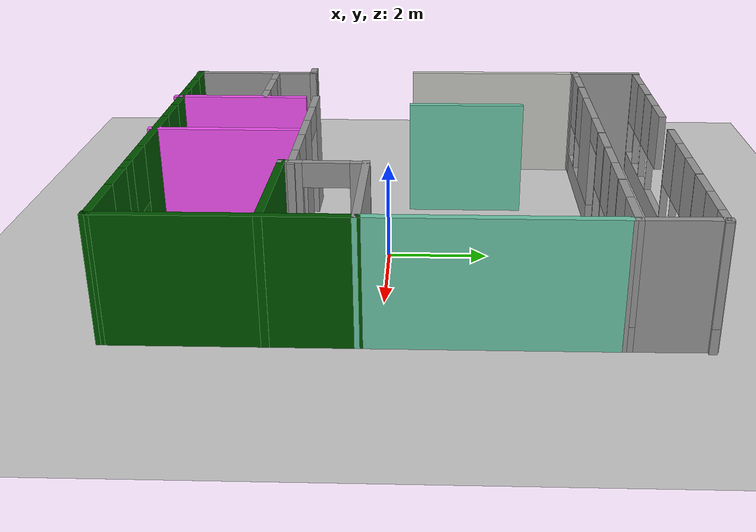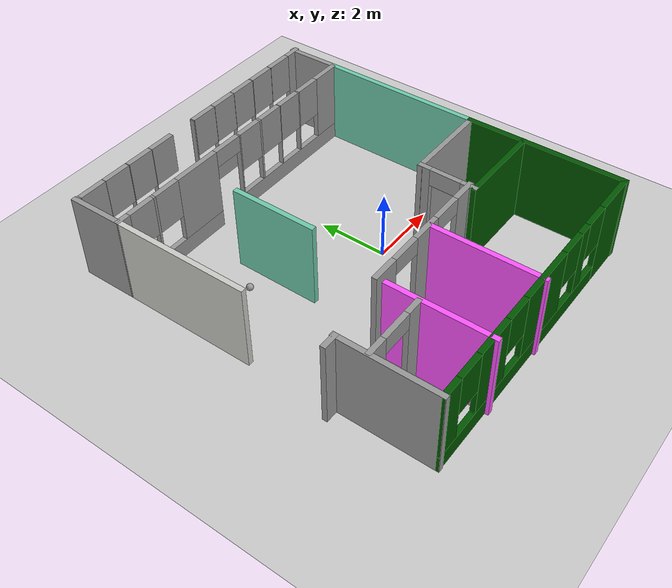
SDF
<sdf version="1.6">
 <world name="default">
  <plugin name="welcome" filename="libwelcome.so"/>
  <light name="sun" type="directional">
   <pose>0 0 10 0 -0 0</pose>
   <diffuse>0.8 0.8 0.8 1</diffuse>
   <specular>0.2 0.2 0.2 1</specular>
   <attenuation>
    <range>1000</range>
    <constant>0.9</constant>
    <linear>0.01</linear>
    <quadratic>0.001</quadratic>
   </attenuation>
   <direction>-0.5 0.1 -0.9</direction>
  </light>
  <model name="ground_plane">
   <static>1</static>
   <link name="link">
    <collision name="collision">
     <geometry><plane><normal>0 0 1</normal><size>100 100</size></plane></geometry>
     <surface>
      <contact><collide_bitmask>65535</collide_bitmask></contact>
      <friction><ode><mu>100</mu><mu2>50</mu2></ode></friction>
     </surface>
    </collision>
    <visual name="visual">
     <cast_shadows>0</cast_shadows>
     <geometry><plane><normal>0 0 1</normal><size>100 100</size></plane></geometry>
     <material>
      <script><uri>file://media/materials/scripts/gazebo.material</uri><name>Gazebo/Grey</name></script>
     </material>
    </visual>
   </link>
  </model>
  <gravity>0 0 -9.8</gravity>
  <magnetic_field>6e-06 2.3e-05 -4.2e-05</magnetic_field>
  <atmosphere type="adiabatic"/>
  <physics name="default_physics" default="0" type="ode">
   <max_step_size>0.001</max_step_size>
   <real_time_factor>1</real_time_factor>
   <real_time_update_rate>1000</real_time_update_rate>
  </physics>
  <scene><ambient>0.4 0.4 0.4 1</ambient><background>0.7 0.7 0.7 1</background><shadows>1</shadows></scene>
  <spherical_coordinates>
   <surface_model>EARTH_WGS84</surface_model>
   <latitude_deg>0</latitude_deg>
   <longitude_deg>0</longitude_deg>
   <elevation>0</elevation>
   <heading_deg>0</heading_deg>
  </spherical_coordinates>
  <model name="our_home">
   <pose>-0.79725 0.43527 0 0 -0 0</pose>
   <link name="Wall_1">
    <collision name="Wall_1_Collision">
     <geometry><box><size>3.98843 0.15 2.5</size></box></geometry>
     <pose>0 0 1.25 0 -0 0</pose>
    </collision>
    <visual name="Wall_1_Visual">
     <pose>0 0 1.25 0 -0 0</pose>
     <geometry><box><size>3.98843 0.15 2.5</size></box></geometry>
     <material>
      <script><uri>file://media/materials/scripts/gazebo.material</uri><name>Gazebo/CeilingTiled</name></script>
      <ambient>0.435294 0.796078 0.67451 1</ambient>
     </material>
     <meta><layer>0</layer></meta>
    </visual>
    <pose>-4.20959 1.9235 0 0 -0 1.57777</pose>
   </link>
   <link name="Wall_13">
    <collision name="Wall_13_Collision">
     <geometry><box><size>4.67985 0.15 2.5</size></box></geometry>
     <pose>0 0 1.25 0 -0 0</pose>
    </collision>
    <visual name="Wall_13_Visual">
     <pose>0 0 1.25 0 -0 0</pose>
     <geometry><box><size>4.67985 0.15 2.5</size></box></geometry>
     <material>
      <script><uri>file://media/materials/scripts/gazebo.material</uri><name>Gazebo/Grey</name></script>
      <ambient>0 0.333333 0 1</ambient>
     </material>
     <meta><layer>0</layer></meta>
    </visual>
    <pose>4.39155 -3.05803 0 0 0 -1.56957</pose>
   </link>
   <link name="Wall_14">
    <pose>0.16282 -5.27256 0 0 -0 3.13446</pose>
    <visual name="Wall_14_Visual_0">
     <pose>-3.6411 0 1.25 0 -0 0</pose>
     <geometry><box><size>1.331 0.15 2.5</size></box></geometry>
     <material>
      <script><uri>file://media/materials/scripts/gazebo.material</uri><name>Gazebo/Grey</name></script>
      <ambient>0 0.333333 0 1</ambient>
     </material>
     <meta><layer>0</layer></meta>
    </visual>
    <collision name="Wall_14_Collision_0">
     <geometry><box><size>1.331 0.15 2.5</size></box></geometry>
     <pose>-3.6411 0 1.25 0 -0 0</pose>
    </collision>
    <visual name="Wall_14_Visual_1">
     <pose>0.665502 0 0.25 0 -0 0</pose>
     <geometry><box><size>7.2822 0.15 0.5</size></box></geometry>
     <material>
      <script><uri>file://media/materials/scripts/gazebo.material</uri><name>Gazebo/Grey</name></script>
      <ambient>0 0.333333 0 1</ambient>
     </material>
     <meta><layer>0</layer></meta>
    </visual>
    <collision name="Wall_14_Collision_1">
     <geometry><box><size>7.2822 0.15 0.5</size></box></geometry>
     <pose>0.665502 0 0.25 0 -0 0</pose>
    </collision>
    <visual name="Wall_14_Visual_2">
     <pose>-1.9778 0 1.5 0 -0 0</pose>
     <geometry><box><size>0.395589 0.15 2</size></box></geometry>
     <material>
      <script><uri>file://media/materials/scripts/gazebo.material</uri><name>Gazebo/Grey</name></script>
      <ambient>0 0.333333 0 1</ambient>
     </material>
     <meta><layer>0</layer></meta>
    </visual>
    <collision name="Wall_14_Collision_2">
     <geometry><box><size>0.395589 0.15 2</size></box></geometry>
     <pose>-1.9778 0 1.5 0 -0 0</pose>
    </collision>
    <visual name="Wall_14_Visual_3">
     <pose>-0.07181 0 1.5 0 -0 0</pose>
     <geometry><box><size>1.8164 0.15 2</size></box></geometry>
     <material>
      <script><uri>file://media/materials/scripts/gazebo.material</uri><name>Gazebo/Grey</name></script>
      <ambient>0 0.333333 0 1</ambient>
     </material>
     <meta><layer>0</layer></meta>
    </visual>
    <collision name="Wall_14_Collision_3">
     <geometry><box><size>1.8164 0.15 2</size></box></geometry>
     <pose>-0.07181 0 1.5 0 -0 0</pose>
    </collision>
    <visual name="Wall_14_Visual_4">
     <pose>2.24598 0 1.5 0 -0 0</pose>
     <geometry><box><size>1.21918 0.15 2</size></box></geometry>
     <material>
      <script><uri>file://media/materials/scripts/gazebo.material</uri><name>Gazebo/Grey</name></script>
      <ambient>0 0.333333 0 1</ambient>
     </material>
     <meta><layer>0</layer></meta>
    </visual>
    <collision name="Wall_14_Collision_4">
     <geometry><box><size>1.21918 0.15 2</size></box></geometry>
     <pose>2.24598 0 1.5 0 -0 0</pose>
    </collision>
    <visual name="Wall_14_Visual_5">
     <pose>3.98108 0 1.5 0 -0 0</pose>
     <geometry><box><size>0.651037 0.15 2</size></box></geometry>
     <material>
      <script><uri>file://media/materials/scripts/gazebo.material</uri><name>Gazebo/Grey</name></script>
      <ambient>0 0.333333 0 1</ambient>
     </material>
     <meta><layer>0</layer></meta>
    </visual>
    <collision name="Wall_14_Collision_5">
     <geometry><box><size>0.651037 0.15 2</size></box></geometry>
     <pose>3.98108 0 1.5 0 -0 0</pose>
    </collision>
    <visual name="Wall_14_Visual_6">
     <pose>-2.5756 0 1.9 0 -0 0</pose>
     <geometry><box><size>0.8 0.15 1.2</size></box></geometry>
     <material>
      <script><uri>file://media/materials/scripts/gazebo.material</uri><name>Gazebo/Grey</name></script>
      <ambient>0 0.333333 0 1</ambient>
     </material>
     <meta><layer>0</layer></meta>
    </visual>
    <collision name="Wall_14_Collision_6">
     <geometry><box><size>0.8 0.15 1.2</size></box></geometry>
     <pose>-2.5756 0 1.9 0 -0 0</pose>
    </collision>
    <visual name="Wall_14_Visual_7">
     <pose>-1.38001 0 1.9 0 -0 0</pose>
     <geometry><box><size>0.8 0.15 1.2</size></box></geometry>
     <material>
      <script><uri>file://media/materials/scripts/gazebo.material</uri><name>Gazebo/Grey</name></script>
      <ambient>0 0.333333 0 1</ambient>
     </material>
     <meta><layer>0</layer></meta>
    </visual>
    <collision name="Wall_14_Collision_7">
     <geometry><box><size>0.8 0.15 1.2</size></box></geometry>
     <pose>-1.38001 0 1.9 0 -0 0</pose>
    </collision>
    <visual name="Wall_14_Visual_8">
     <pose>1.23639 0 1.9 0 -0 0</pose>
     <geometry><box><size>0.8 0.15 1.2</size></box></geometry>
     <material>
      <script><uri>file://media/materials/scripts/gazebo.material</uri><name>Gazebo/Grey</name></script>
      <ambient>0 0.333333 0 1</ambient>
     </material>
     <meta><layer>0</layer></meta>
    </visual>
    <collision name="Wall_14_Collision_8">
     <geometry><box><size>0.8 0.15 1.2</size></box></geometry>
     <pose>1.23639 0 1.9 0 -0 0</pose>
    </collision>
    <visual name="Wall_14_Visual_9">
     <pose>3.25557 0 1.9 0 -0 0</pose>
     <geometry><box><size>0.8 0.15 1.2</size></box></geometry>
     <material>
      <script><uri>file://media/materials/scripts/gazebo.material</uri><name>Gazebo/Grey</name></script>
      <ambient>0 0.333333 0 1</ambient>
     </material>
     <meta><layer>0</layer></meta>
    </visual>
    <collision name="Wall_14_Collision_9">
     <geometry><box><size>0.8 0.15 1.2</size></box></geometry>
     <pose>3.25557 0 1.9 0 -0 0</pose>
    </collision>
   </link>
   <link name="Wall_17">
    <collision name="Wall_17_Collision">
     <geometry><box><size>2.92769 0.15 2.5</size></box></geometry>
     <pose>0 0 1.25 0 -0 0</pose>
    </collision>
    <visual name="Wall_17_Visual">
     <pose>0 0 1.25 0 -0 0</pose>
     <geometry><box><size>2.92769 0.15 2.5</size></box></geometry>
     <material>
      <script><uri>file://media/materials/scripts/gazebo.material</uri><name>Gazebo/Grey</name></script>
      <ambient>1 1 1 1</ambient>
     </material>
     <meta><layer>0</layer></meta>
    </visual>
    <pose>-4.06867 -3.87377 0 0 -0 1.5708</pose>
   </link>
   <link name="Wall_2">
    <pose>0.078216 3.87343 0 0 -0 0</pose>
    <visual name="Wall_2_Visual_0">
     <pose>-4.17296 0 1.25 0 -0 0</pose>
     <geometry><box><size>0.406443 0.15 2.5</size></box></geometry>
     <material>
      <script><uri>file://media/materials/scripts/gazebo.material</uri><name>Gazebo/Grey</name></script>
      <ambient>1 1 1 1</ambient>
     </material>
     <meta><layer>0</layer></meta>
    </visual>
    <collision name="Wall_2_Collision_0">
     <geometry><box><size>0.406443 0.15 2.5</size></box></geometry>
     <pose>-4.17296 0 1.25 0 -0 0</pose>
    </collision>
    <visual name="Wall_2_Visual_1">
     <pose>0.048461 0 1.25 0 -0 0</pose>
     <geometry><box><size>0.041555 0.15 2.5</size></box></geometry>
     <material>
      <script><uri>file://media/materials/scripts/gazebo.material</uri><name>Gazebo/Grey</name></script>
      <ambient>1 1 1 1</ambient>
     </material>
     <meta><layer>0</layer></meta>
    </visual>
    <collision name="Wall_2_Collision_1">
     <geometry><box><size>0.041555 0.15 2.5</size></box></geometry>
     <pose>0.048461 0 1.25 0 -0 0</pose>
    </collision>
    <visual name="Wall_2_Visual_2">
     <pose>-2.42103 0 0.25 0 -0 0</pose>
     <geometry><box><size>3.09742 0.15 0.5</size></box></geometry>
     <material>
      <script><uri>file://media/materials/scripts/gazebo.material</uri><name>Gazebo/Grey</name></script>
      <ambient>1 1 1 1</ambient>
     </material>
     <meta><layer>0</layer></meta>
    </visual>
    <collision name="Wall_2_Collision_2">
     <geometry><box><size>3.09742 0.15 0.5</size></box></geometry>
     <pose>-2.42103 0 0.25 0 -0 0</pose>
    </collision>
    <visual name="Wall_2_Visual_3">
     <pose>2.22271 0 0.25 0 -0 0</pose>
     <geometry><box><size>4.30694 0.15 0.5</size></box></geometry>
     <material>
      <script><uri>file://media/materials/scripts/gazebo.material</uri><name>Gazebo/Grey</name></script>
      <ambient>1 1 1 1</ambient>
     </material>
     <meta><layer>0</layer></meta>
    </visual>
    <collision name="Wall_2_Collision_3">
     <geometry><box><size>4.30694 0.15 0.5</size></box></geometry>
     <pose>2.22271 0 0.25 0 -0 0</pose>
    </collision>
    <visual name="Wall_2_Visual_4">
     <pose>-3.13433 0 1.5 0 -0 0</pose>
     <geometry><box><size>0.070821 0.15 2</size></box></geometry>
     <material>
      <script><uri>file://media/materials/scripts/gazebo.material</uri><name>Gazebo/Grey</name></script>
      <ambient>1 1 1 1</ambient>
     </material>
     <meta><layer>0</layer></meta>
    </visual>
    <collision name="Wall_2_Collision_4">
     <geometry><box><size>0.070821 0.15 2</size></box></geometry>
     <pose>-3.13433 0 1.5 0 -0 0</pose>
    </collision>
    <visual name="Wall_2_Visual_5">
     <pose>-1.58562 0 1.5 0 -0 0</pose>
     <geometry><box><size>1.4266 0.15 2</size></box></geometry>
     <material>
      <script><uri>file://media/materials/scripts/gazebo.material</uri><name>Gazebo/Grey</name></script>
      <ambient>1 1 1 1</ambient>
     </material>
     <meta><layer>0</layer></meta>
    </visual>
    <collision name="Wall_2_Collision_5">
     <geometry><box><size>1.4266 0.15 2</size></box></geometry>
     <pose>-1.58562 0 1.5 0 -0 0</pose>
    </collision>
    <visual name="Wall_2_Visual_6">
     <pose>-1.58562 0 1.5 0 -0 0</pose>
     <geometry><box><size>1.4266 0.15 2</size></box></geometry>
     <material>
      <script><uri>file://media/materials/scripts/gazebo.material</uri><name>Gazebo/Grey</name></script>
      <ambient>1 1 1 1</ambient>
     </material>
     <meta><layer>0</layer></meta>
    </visual>
    <collision name="Wall_2_Collision_6">
     <geometry><box><size>1.4266 0.15 2</size></box></geometry>
     <pose>-1.58562 0 1.5 0 -0 0</pose>
    </collision>
    <visual name="Wall_2_Visual_7">
     <pose>0.902349 0 1.5 0 -0 0</pose>
     <geometry><box><size>0.066221 0.15 2</size></box></geometry>
     <material>
      <script><uri>file://media/materials/scripts/gazebo.material</uri><name>Gazebo/Grey</name></script>
      <ambient>1 1 1 1</ambient>
     </material>
     <meta><layer>0</layer></meta>
    </visual>
    <collision name="Wall_2_Collision_7">
     <geometry><box><size>0.066221 0.15 2</size></box></geometry>
     <pose>0.902349 0 1.5 0 -0 0</pose>
    </collision>
    <visual name="Wall_2_Visual_8">
     <pose>1.74516 0 1.5 0 -0 0</pose>
     <geometry><box><size>0.019398 0.15 2</size></box></geometry>
     <material>
      <script><uri>file://media/materials/scripts/gazebo.material</uri><name>Gazebo/Grey</name></script>
      <ambient>1 1 1 1</ambient>
     </material>
     <meta><layer>0</layer></meta>
    </visual>
    <collision name="Wall_2_Collision_8">
     <geometry><box><size>0.019398 0.15 2</size></box></geometry>
     <pose>1.74516 0 1.5 0 -0 0</pose>
    </collision>
    <visual name="Wall_2_Visual_9">
     <pose>2.57626 0 1.5 0 -0 0</pose>
     <geometry><box><size>0.042809 0.15 2</size></box></geometry>
     <material>
      <script><uri>file://media/materials/scripts/gazebo.material</uri><name>Gazebo/Grey</name></script>
      <ambient>1 1 1 1</ambient>
     </material>
     <meta><layer>0</layer></meta>
    </visual>
    <collision name="Wall_2_Collision_9">
     <geometry><box><size>0.042809 0.15 2</size></box></geometry>
     <pose>2.57626 0 1.5 0 -0 0</pose>
    </collision>
    <visual name="Wall_2_Visual_10">
     <pose>3.88692 0 1.5 0 -0 0</pose>
     <geometry><box><size>0.978513 0.15 2</size></box></geometry>
     <material>
      <script><uri>file://media/materials/scripts/gazebo.material</uri><name>Gazebo/Grey</name></script>
      <ambient>1 1 1 1</ambient>
     </material>
     <meta><layer>0</layer></meta>
    </visual>
    <collision name="Wall_2_Collision_10">
     <geometry><box><size>0.978513 0.15 2</size></box></geometry>
     <pose>3.88692 0 1.5 0 -0 0</pose>
    </collision>
    <visual name="Wall_2_Visual_11">
     <pose>-3.56974 0 1.9 0 -0 0</pose>
     <geometry><box><size>0.8 0.15 1.2</size></box></geometry>
     <material>
      <script><uri>file://media/materials/scripts/gazebo.material</uri><name>Gazebo/Grey</name></script>
      <ambient>1 1 1 1</ambient>
     </material>
     <meta><layer>0</layer></meta>
    </visual>
    <collision name="Wall_2_Collision_11">
     <geometry><box><size>0.8 0.15 1.2</size></box></geometry>
     <pose>-3.56974 0 1.9 0 -0 0</pose>
    </collision>
    <visual name="Wall_2_Visual_12">
     <pose>0.469238 0 1.9 0 -0 0</pose>
     <geometry><box><size>0.8 0.15 1.2</size></box></geometry>
     <material>
      <script><uri>file://media/materials/scripts/gazebo.material</uri><name>Gazebo/Grey</name></script>
      <ambient>1 1 1 1</ambient>
     </material>
     <meta><layer>0</layer></meta>
    </visual>
    <collision name="Wall_2_Collision_12">
     <geometry><box><size>0.8 0.15 1.2</size></box></geometry>
     <pose>0.469238 0 1.9 0 -0 0</pose>
    </collision>
    <visual name="Wall_2_Visual_13">
     <pose>-2.69891 0 1.9 0 -0 0</pose>
     <geometry><box><size>0.8 0.15 1.2</size></box></geometry>
     <material>
      <script><uri>file://media/materials/scripts/gazebo.material</uri><name>Gazebo/Grey</name></script>
      <ambient>1 1 1 1</ambient>
     </material>
     <meta><layer>0</layer></meta>
    </visual>
    <collision name="Wall_2_Collision_13">
     <geometry><box><size>0.8 0.15 1.2</size></box></geometry>
     <pose>-2.69891 0 1.9 0 -0 0</pose>
    </collision>
    <visual name="Wall_2_Visual_14">
     <pose>1.33546 0 1.9 0 -0 0</pose>
     <geometry><box><size>0.8 0.15 1.2</size></box></geometry>
     <material>
      <script><uri>file://media/materials/scripts/gazebo.material</uri><name>Gazebo/Grey</name></script>
      <ambient>1 1 1 1</ambient>
     </material>
     <meta><layer>0</layer></meta>
    </visual>
    <collision name="Wall_2_Collision_14">
     <geometry><box><size>0.8 0.15 1.2</size></box></geometry>
     <pose>1.33546 0 1.9 0 -0 0</pose>
    </collision>
    <visual name="Wall_2_Visual_15">
     <pose>2.15486 0 1.9 0 -0 0</pose>
     <geometry><box><size>0.8 0.15 1.2</size></box></geometry>
     <material>
      <script><uri>file://media/materials/scripts/gazebo.material</uri><name>Gazebo/Grey</name></script>
      <ambient>1 1 1 1</ambient>
     </material>
     <meta><layer>0</layer></meta>
    </visual>
    <collision name="Wall_2_Collision_15">
     <geometry><box><size>0.8 0.15 1.2</size></box></geometry>
     <pose>2.15486 0 1.9 0 -0 0</pose>
    </collision>
    <visual name="Wall_2_Visual_16">
     <pose>2.99767 0 1.9 0 -0 0</pose>
     <geometry><box><size>0.8 0.15 1.2</size></box></geometry>
     <material>
      <script><uri>file://media/materials/scripts/gazebo.material</uri><name>Gazebo/Grey</name></script>
      <ambient>1 1 1 1</ambient>
     </material>
     <meta><layer>0</layer></meta>
    </visual>
    <collision name="Wall_2_Collision_16">
     <geometry><box><size>0.8 0.15 1.2</size></box></geometry>
     <pose>2.99767 0 1.9 0 -0 0</pose>
    </collision>
    <visual name="Wall_2_Visual_17">
     <pose>-0.422317 0 2.25 0 -0 0</pose>
     <geometry><box><size>0.9 0.15 0.5</size></box></geometry>
     <material>
      <script><uri>file://media/materials/scripts/gazebo.material</uri><name>Gazebo/Grey</name></script>
      <ambient>1 1 1 1</ambient>
     </material>
     <meta><layer>0</layer></meta>
    </visual>
    <collision name="Wall_2_Collision_17">
     <geometry><box><size>0.9 0.15 0.5</size></box></geometry>
     <pose>-0.422317 0 2.25 0 -0 0</pose>
    </collision>
    <visual name="Wall_2_Visual_18">
     <pose>-0.422317 0 2.25 0 -0 0</pose>
     <geometry><box><size>0.9 0.15 0.5</size></box></geometry>
     <material>
      <script><uri>file://media/materials/scripts/gazebo.material</uri><name>Gazebo/Grey</name></script>
      <ambient>1 1 1 1</ambient>
     </material>
     <meta><layer>0</layer></meta>
    </visual>
    <collision name="Wall_2_Collision_18">
     <geometry><box><size>0.9 0.15 0.5</size></box></geometry>
     <pose>-0.422317 0 2.25 0 -0 0</pose>
    </collision>
   </link>
   <link name="Wall_22">
    <collision name="Wall_22_Collision">
     <geometry><box><size>2.64011 0.15 2.5</size></box></geometry>
     <pose>0 0 1.25 0 -0 0</pose>
    </collision>
    <visual name="Wall_22_Visual">
     <pose>0 0 1.25 0 -0 0</pose>
     <geometry><box><size>2.64011 0.15 2.5</size></box></geometry>
     <material>
      <script><uri>file://media/materials/scripts/gazebo.material</uri><name>Gazebo/Grey</name></script>
      <ambient>0 0.333333 0 1</ambient>
     </material>
     <meta><layer>0</layer></meta>
    </visual>
    <pose>3.1493 -2.40829 0 0 0 -0.008123</pose>
   </link>
   <link name="Wall_3">
    <collision name="Wall_3_Collision">
     <geometry><box><size>4.78579 0.15 2.5</size></box></geometry>
     <pose>0 0 1.25 0 -0 0</pose>
    </collision>
    <visual name="Wall_3_Visual">
     <pose>0 0 1.25 0 -0 0</pose>
     <geometry><box><size>4.78579 0.15 2.5</size></box></geometry>
     <material>
      <script><uri>file://media/materials/scripts/gazebo.material</uri><name>Gazebo/Grey</name></script>
      <ambient>0.435294 0.796078 0.67451 1</ambient>
     </material>
     <meta><layer>0</layer></meta>
    </visual>
    <pose>4.38409 1.52478 0 0 0 -1.56877</pose>
   </link>
   <link name="Wall_30">
    <collision name="Wall_30_Collision">
     <geometry><box><size>3.25 0.15 2.5</size></box></geometry>
     <pose>0 0 1.25 0 -0 0</pose>
    </collision>
    <visual name="Wall_30_Visual">
     <pose>0 0 1.25 0 -0 0</pose>
     <geometry><box><size>3.25 0.15 2.5</size></box></geometry>
     <material>
      <script><uri>file://media/materials/scripts/gazebo.material</uri><name>Gazebo/Grey</name></script>
      <ambient>1 0.333333 1 1</ambient>
     </material>
     <meta><layer>0</layer></meta>
    </visual>
    <pose>0.098545 -3.79811 0 0 0 -1.5708</pose>
   </link>
   <link name="Wall_32">
    <collision name="Wall_32_Collision">
     <geometry><box><size>3 0.15 2.5</size></box></geometry>
     <pose>0 0 1.25 0 -0 0</pose>
    </collision>
    <visual name="Wall_32_Visual">
     <pose>0 0 1.25 0 -0 0</pose>
     <geometry><box><size>3 0.15 2.5</size></box></geometry>
     <material>
      <script><uri>file://media/materials/scripts/gazebo.material</uri><name>Gazebo/Grey</name></script>
      <ambient>1 0.333333 1 1</ambient>
     </material>
     <meta><layer>0</layer></meta>
    </visual>
    <pose>-2.11769 -3.92647 0 0 0 -1.5708</pose>
   </link>
   <link name="Wall_34">
    <pose>-3.10668 -3.3867 0 0 -0 0</pose>
    <visual name="Wall_34_Visual_0">
     <pose>-0.705147 0 1.25 0 -0 0</pose>
     <geometry><box><size>0.589707 0.15 2.5</size></box></geometry>
     <material>
      <script><uri>file://media/materials/scripts/gazebo.material</uri><name>Gazebo/Grey</name></script>
      <ambient>1 1 1 1</ambient>
     </material>
     <meta><layer>0</layer></meta>
    </visual>
    <collision name="Wall_34_Collision_0">
     <geometry><box><size>0.589707 0.15 2.5</size></box></geometry>
     <pose>-0.705147 0 1.25 0 -0 0</pose>
    </collision>
    <visual name="Wall_34_Visual_1">
     <pose>0.744853 0 1.25 0 -0 0</pose>
     <geometry><box><size>0.510293 0.15 2.5</size></box></geometry>
     <material>
      <script><uri>file://media/materials/scripts/gazebo.material</uri><name>Gazebo/Grey</name></script>
      <ambient>1 1 1 1</ambient>
     </material>
     <meta><layer>0</layer></meta>
    </visual>
    <collision name="Wall_34_Collision_1">
     <geometry><box><size>0.510293 0.15 2.5</size></box></geometry>
     <pose>0.744853 0 1.25 0 -0 0</pose>
    </collision>
    <visual name="Wall_34_Visual_2">
     <pose>0.039707 0 2.25 0 -0 0</pose>
     <geometry><box><size>0.9 0.15 0.5</size></box></geometry>
     <material>
      <script><uri>file://media/materials/scripts/gazebo.material</uri><name>Gazebo/Grey</name></script>
      <ambient>1 1 1 1</ambient>
     </material>
     <meta><layer>0</layer></meta>
    </visual>
    <collision name="Wall_34_Collision_2">
     <geometry><box><size>0.9 0.15 0.5</size></box></geometry>
     <pose>0.039707 0 2.25 0 -0 0</pose>
    </collision>
   </link>
   <link name="Wall_37">
    <pose>-0.059424 -2.20614 0 0 -0 3.14159</pose>
    <visual name="Wall_37_Visual_0">
     <pose>-1.74898 0 1.25 0 -0 0</pose>
     <geometry><box><size>0.752041 0.15 2.5</size></box></geometry>
     <material>
      <script><uri>file://media/materials/scripts/gazebo.material</uri><name>Gazebo/Grey</name></script>
      <ambient>1 1 1 1</ambient>
     </material>
     <meta><layer>0</layer></meta>
    </visual>
    <collision name="Wall_37_Collision_0">
     <geometry><box><size>0.752041 0.15 2.5</size></box></geometry>
     <pose>-1.74898 0 1.25 0 -0 0</pose>
    </collision>
    <visual name="Wall_37_Visual_1">
     <pose>-0.021503 0 1.25 0 -0 0</pose>
     <geometry><box><size>0.902912 0.15 2.5</size></box></geometry>
     <material>
      <script><uri>file://media/materials/scripts/gazebo.material</uri><name>Gazebo/Grey</name></script>
      <ambient>1 1 1 1</ambient>
     </material>
     <meta><layer>0</layer></meta>
    </visual>
    <collision name="Wall_37_Collision_1">
     <geometry><box><size>0.902912 0.15 2.5</size></box></geometry>
     <pose>-0.021503 0 1.25 0 -0 0</pose>
    </collision>
    <visual name="Wall_37_Visual_2">
     <pose>1.72748 0 1.25 0 -0 0</pose>
     <geometry><box><size>0.795047 0.15 2.5</size></box></geometry>
     <material>
      <script><uri>file://media/materials/scripts/gazebo.material</uri><name>Gazebo/Grey</name></script>
      <ambient>1 1 1 1</ambient>
     </material>
     <meta><layer>0</layer></meta>
    </visual>
    <collision name="Wall_37_Collision_2">
     <geometry><box><size>0.795047 0.15 2.5</size></box></geometry>
     <pose>1.72748 0 1.25 0 -0 0</pose>
    </collision>
    <visual name="Wall_37_Visual_3">
     <pose>-0.922959 0 2.25 0 -0 0</pose>
     <geometry><box><size>0.9 0.15 0.5</size></box></geometry>
     <material>
      <script><uri>file://media/materials/scripts/gazebo.material</uri><name>Gazebo/Grey</name></script>
      <ambient>1 1 1 1</ambient>
     </material>
     <meta><layer>0</layer></meta>
    </visual>
    <collision name="Wall_37_Collision_3">
     <geometry><box><size>0.9 0.15 0.5</size></box></geometry>
     <pose>-0.922959 0 2.25 0 -0 0</pose>
    </collision>
    <visual name="Wall_37_Visual_4">
     <pose>0.879953 0 2.25 0 -0 0</pose>
     <geometry><box><size>0.9 0.15 0.5</size></box></geometry>
     <material>
      <script><uri>file://media/materials/scripts/gazebo.material</uri><name>Gazebo/Grey</name></script>
      <ambient>1 1 1 1</ambient>
     </material>
     <meta><layer>0</layer></meta>
    </visual>
    <collision name="Wall_37_Collision_4">
     <geometry><box><size>0.9 0.15 0.5</size></box></geometry>
     <pose>0.879953 0 2.25 0 -0 0</pose>
    </collision>
   </link>
   <link name="Wall_39">
    <collision name="Wall_39_Collision">
     <geometry><box><size>0.5 0.15 2.5</size></box></geometry>
     <pose>0 0 1.25 0 -0 0</pose>
    </collision>
    <visual name="Wall_39_Visual">
     <pose>0 0 1.25 0 -0 0</pose>
     <geometry><box><size>0.5 0.15 2.5</size></box></geometry>
     <material>
      <script><uri>file://media/materials/scripts/gazebo.material</uri><name>Gazebo/Grey</name></script>
      <ambient>1 1 1 1</ambient>
     </material>
     <meta><layer>0</layer></meta>
    </visual>
    <pose>-4.24367 -2.50806 0 0 -0 3.14159</pose>
   </link>
   <link name="Wall_47">
    <collision name="Wall_47_Collision">
     <geometry><box><size>1.65784 0.15 2.5</size></box></geometry>
     <pose>0 0 1.25 0 -0 0</pose>
    </collision>
    <visual name="Wall_47_Visual">
     <pose>0 0 1.25 0 -0 0</pose>
     <geometry><box><size>1.65784 0.15 2.5</size></box></geometry>
     <material>
      <script><uri>file://media/materials/scripts/gazebo.material</uri><name>Gazebo/Grey</name></script>
      <ambient>1 1 1 1</ambient>
     </material>
     <meta><layer>0</layer></meta>
    </visual>
    <pose>-4.23291 4.59652 0 0 -0 1.58399</pose>
   </link>
   <link name="Wall_48">
    <pose>0.118674 5.31961 0 0 -0 0</pose>
    <visual name="Wall_48_Visual_0">
     <pose>-4.31238 0 1.25 0 -0 0</pose>
     <geometry><box><size>0.125234 0.15 2.5</size></box></geometry>
     <material>
      <script><uri>file://media/materials/scripts/gazebo.material</uri><name>Gazebo/Grey</name></script>
      <ambient>1 1 1 1</ambient>
     </material>
     <meta><layer>0</layer></meta>
    </visual>
    <collision name="Wall_48_Collision_0">
     <geometry><box><size>0.125234 0.15 2.5</size></box></geometry>
     <pose>-4.31238 0 1.25 0 -0 0</pose>
    </collision>
    <visual name="Wall_48_Visual_1">
     <pose>0.062617 0 0.25 0 -0 0</pose>
     <geometry><box><size>8.62477 0.15 0.5</size></box></geometry>
     <material>
      <script><uri>file://media/materials/scripts/gazebo.material</uri><name>Gazebo/Grey</name></script>
      <ambient>1 1 1 1</ambient>
     </material>
     <meta><layer>0</layer></meta>
    </visual>
    <collision name="Wall_48_Collision_1">
     <geometry><box><size>8.62477 0.15 0.5</size></box></geometry>
     <pose>0.062617 0 0.25 0 -0 0</pose>
    </collision>
    <visual name="Wall_48_Visual_2">
     <pose>-3.4464 0 1.5 0 -0 0</pose>
     <geometry><box><size>0.006725 0.15 2</size></box></geometry>
     <material>
      <script><uri>file://media/materials/scripts/gazebo.material</uri><name>Gazebo/Grey</name></script>
      <ambient>1 1 1 1</ambient>
     </material>
     <meta><layer>0</layer></meta>
    </visual>
    <collision name="Wall_48_Collision_2">
     <geometry><box><size>0.006725 0.15 2</size></box></geometry>
     <pose>-3.4464 0 1.5 0 -0 0</pose>
    </collision>
    <visual name="Wall_48_Visual_3">
     <pose>-2.63307 0 1.5 0 -0 0</pose>
     <geometry><box><size>0.01995 0.15 2</size></box></geometry>
     <material>
      <script><uri>file://media/materials/scripts/gazebo.material</uri><name>Gazebo/Grey</name></script>
      <ambient>1 1 1 1</ambient>
     </material>
     <meta><layer>0</layer></meta>
    </visual>
    <collision name="Wall_48_Collision_3">
     <geometry><box><size>0.01995 0.15 2</size></box></geometry>
     <pose>-2.63307 0 1.5 0 -0 0</pose>
    </collision>
    <visual name="Wall_48_Visual_4">
     <pose>-1.81598 0 1.5 0 -0 0</pose>
     <geometry><box><size>0.014211 0.15 2</size></box></geometry>
     <material>
      <script><uri>file://media/materials/scripts/gazebo.material</uri><name>Gazebo/Grey</name></script>
      <ambient>1 1 1 1</ambient>
     </material>
     <meta><layer>0</layer></meta>
    </visual>
    <collision name="Wall_48_Collision_4">
     <geometry><box><size>0.014211 0.15 2</size></box></geometry>
     <pose>-1.81598 0 1.5 0 -0 0</pose>
    </collision>
    <visual name="Wall_48_Visual_5">
     <pose>-0.206278 0 1.5 0 -0 0</pose>
     <geometry><box><size>0.033175 0.15 2</size></box></geometry>
     <material>
      <script><uri>file://media/materials/scripts/gazebo.material</uri><name>Gazebo/Grey</name></script>
      <ambient>1 1 1 1</ambient>
     </material>
     <meta><layer>0</layer></meta>
    </visual>
    <collision name="Wall_48_Collision_5">
     <geometry><box><size>0.033175 0.15 2</size></box></geometry>
     <pose>-0.206278 0 1.5 0 -0 0</pose>
    </collision>
    <visual name="Wall_48_Visual_6">
     <pose>0.613672 0 1.5 0 -0 0</pose>
     <geometry><box><size>0.006725 0.15 2</size></box></geometry>
     <material>
      <script><uri>file://media/materials/scripts/gazebo.material</uri><name>Gazebo/Grey</name></script>
      <ambient>1 1 1 1</ambient>
     </material>
     <meta><layer>0</layer></meta>
    </visual>
    <collision name="Wall_48_Collision_6">
     <geometry><box><size>0.006725 0.15 2</size></box></geometry>
     <pose>0.613672 0 1.5 0 -0 0</pose>
    </collision>
    <visual name="Wall_48_Visual_7">
     <pose>1.4204 0 1.5 0 -0 0</pose>
     <geometry><box><size>0.006725 0.15 2</size></box></geometry>
     <material>
      <script><uri>file://media/materials/scripts/gazebo.material</uri><name>Gazebo/Grey</name></script>
      <ambient>1 1 1 1</ambient>
     </material>
     <meta><layer>0</layer></meta>
    </visual>
    <collision name="Wall_48_Collision_7">
     <geometry><box><size>0.006725 0.15 2</size></box></geometry>
     <pose>1.4204 0 1.5 0 -0 0</pose>
    </collision>
    <visual name="Wall_48_Visual_8">
     <pose>2.23373 0 1.5 0 -0 0</pose>
     <geometry><box><size>0.01995 0.15 2</size></box></geometry>
     <material>
      <script><uri>file://media/materials/scripts/gazebo.material</uri><name>Gazebo/Grey</name></script>
      <ambient>1 1 1 1</ambient>
     </material>
     <meta><layer>0</layer></meta>
    </visual>
    <collision name="Wall_48_Collision_8">
     <geometry><box><size>0.01995 0.15 2</size></box></geometry>
     <pose>2.23373 0 1.5 0 -0 0</pose>
    </collision>
    <visual name="Wall_48_Visual_9">
     <pose>3.04707 0 1.5 0 -0 0</pose>
     <geometry><box><size>0.006725 0.15 2</size></box></geometry>
     <material>
      <script><uri>file://media/materials/scripts/gazebo.material</uri><name>Gazebo/Grey</name></script>
      <ambient>1 1 1 1</ambient>
     </material>
     <meta><layer>0</layer></meta>
    </visual>
    <collision name="Wall_48_Collision_9">
     <geometry><box><size>0.006725 0.15 2</size></box></geometry>
     <pose>3.04707 0 1.5 0 -0 0</pose>
    </collision>
    <visual name="Wall_48_Visual_10">
     <pose>4.11272 0 1.5 0 -0 0</pose>
     <geometry><box><size>0.524565 0.15 2</size></box></geometry>
     <material>
      <script><uri>file://media/materials/scripts/gazebo.material</uri><name>Gazebo/Grey</name></script>
      <ambient>1 1 1 1</ambient>
     </material>
     <meta><layer>0</layer></meta>
    </visual>
    <collision name="Wall_48_Collision_10">
     <geometry><box><size>0.524565 0.15 2</size></box></geometry>
     <pose>4.11272 0 1.5 0 -0 0</pose>
    </collision>
    <visual name="Wall_48_Visual_11">
     <pose>-3.84977 0 1.9 0 -0 0</pose>
     <geometry><box><size>0.8 0.15 1.2</size></box></geometry>
     <material>
      <script><uri>file://media/materials/scripts/gazebo.material</uri><name>Gazebo/Grey</name></script>
      <ambient>1 1 1 1</ambient>
     </material>
     <meta><layer>0</layer></meta>
    </visual>
    <collision name="Wall_48_Collision_11">
     <geometry><box><size>0.8 0.15 1.2</size></box></geometry>
     <pose>-3.84977 0 1.9 0 -0 0</pose>
    </collision>
    <visual name="Wall_48_Visual_12">
     <pose>-3.04304 0 1.9 0 -0 0</pose>
     <geometry><box><size>0.8 0.15 1.2</size></box></geometry>
     <material>
      <script><uri>file://media/materials/scripts/gazebo.material</uri><name>Gazebo/Grey</name></script>
      <ambient>1 1 1 1</ambient>
     </material>
     <meta><layer>0</layer></meta>
    </visual>
    <collision name="Wall_48_Collision_12">
     <geometry><box><size>0.8 0.15 1.2</size></box></geometry>
     <pose>-3.04304 0 1.9 0 -0 0</pose>
    </collision>
    <visual name="Wall_48_Visual_13">
     <pose>-2.22309 0 1.9 0 -0 0</pose>
     <geometry><box><size>0.8 0.15 1.2</size></box></geometry>
     <material>
      <script><uri>file://media/materials/scripts/gazebo.material</uri><name>Gazebo/Grey</name></script>
      <ambient>1 1 1 1</ambient>
     </material>
     <meta><layer>0</layer></meta>
    </visual>
    <collision name="Wall_48_Collision_13">
     <geometry><box><size>0.8 0.15 1.2</size></box></geometry>
     <pose>-2.22309 0 1.9 0 -0 0</pose>
    </collision>
    <visual name="Wall_48_Visual_14">
     <pose>-1.41587 0 1.9 0 -0 0</pose>
     <geometry><box><size>0.786014 0.15 1.2</size></box></geometry>
     <material>
      <script><uri>file://media/materials/scripts/gazebo.material</uri><name>Gazebo/Grey</name></script>
      <ambient>1 1 1 1</ambient>
     </material>
     <meta><layer>0</layer></meta>
    </visual>
    <collision name="Wall_48_Collision_14">
     <geometry><box><size>0.786014 0.15 1.2</size></box></geometry>
     <pose>-1.41587 0 1.9 0 -0 0</pose>
    </collision>
    <visual name="Wall_48_Visual_15">
     <pose>0.21031 0 1.9 0 -0 0</pose>
     <geometry><box><size>0.8 0.15 1.2</size></box></geometry>
     <material>
      <script><uri>file://media/materials/scripts/gazebo.material</uri><name>Gazebo/Grey</name></script>
      <ambient>1 1 1 1</ambient>
     </material>
     <meta><layer>0</layer></meta>
    </visual>
    <collision name="Wall_48_Collision_15">
     <geometry><box><size>0.8 0.15 1.2</size></box></geometry>
     <pose>0.21031 0 1.9 0 -0 0</pose>
    </collision>
    <visual name="Wall_48_Visual_16">
     <pose>1.01703 0 1.9 0 -0 0</pose>
     <geometry><box><size>0.8 0.15 1.2</size></box></geometry>
     <material>
      <script><uri>file://media/materials/scripts/gazebo.material</uri><name>Gazebo/Grey</name></script>
      <ambient>1 1 1 1</ambient>
     </material>
     <meta><layer>0</layer></meta>
    </visual>
    <collision name="Wall_48_Collision_16">
     <geometry><box><size>0.8 0.15 1.2</size></box></geometry>
     <pose>1.01703 0 1.9 0 -0 0</pose>
    </collision>
    <visual name="Wall_48_Visual_17">
     <pose>1.82376 0 1.9 0 -0 0</pose>
     <geometry><box><size>0.8 0.15 1.2</size></box></geometry>
     <material>
      <script><uri>file://media/materials/scripts/gazebo.material</uri><name>Gazebo/Grey</name></script>
      <ambient>1 1 1 1</ambient>
     </material>
     <meta><layer>0</layer></meta>
    </visual>
    <collision name="Wall_48_Collision_17">
     <geometry><box><size>0.8 0.15 1.2</size></box></geometry>
     <pose>1.82376 0 1.9 0 -0 0</pose>
    </collision>
    <visual name="Wall_48_Visual_18">
     <pose>2.64371 0 1.9 0 -0 0</pose>
     <geometry><box><size>0.8 0.15 1.2</size></box></geometry>
     <material>
      <script><uri>file://media/materials/scripts/gazebo.material</uri><name>Gazebo/Grey</name></script>
      <ambient>1 1 1 1</ambient>
     </material>
     <meta><layer>0</layer></meta>
    </visual>
    <collision name="Wall_48_Collision_18">
     <geometry><box><size>0.8 0.15 1.2</size></box></geometry>
     <pose>2.64371 0 1.9 0 -0 0</pose>
    </collision>
    <visual name="Wall_48_Visual_19">
     <pose>3.45044 0 1.9 0 -0 0</pose>
     <geometry><box><size>0.8 0.15 1.2</size></box></geometry>
     <material>
      <script><uri>file://media/materials/scripts/gazebo.material</uri><name>Gazebo/Grey</name></script>
      <ambient>1 1 1 1</ambient>
     </material>
     <meta><layer>0</layer></meta>
    </visual>
    <collision name="Wall_48_Collision_19">
     <geometry><box><size>0.8 0.15 1.2</size></box></geometry>
     <pose>3.45044 0 1.9 0 -0 0</pose>
    </collision>
   </link>
   <link name="Wall_5">
    <collision name="Wall_5_Collision">
     <geometry><box><size>2.5 0.15 2.5</size></box></geometry>
     <pose>0 0 1.25 0 -0 0</pose>
    </collision>
    <visual name="Wall_5_Visual">
     <pose>0 0 1.25 0 -0 0</pose>
     <geometry><box><size>2.5 0.15 2.5</size></box></geometry>
     <material>
      <script><uri>file://media/materials/scripts/gazebo.material</uri><name>Gazebo/Grey</name></script>
      <ambient>0.435294 0.796078 0.67451 1</ambient>
     </material>
     <meta><layer>0</layer></meta>
    </visual>
    <pose>-1.64582 1.16981 0 0 0 -1.5708</pose>
   </link>
   <link name="Wall_53">
    <collision name="Wall_53_Collision">
     <geometry><box><size>1.65787 0.15 2.5</size></box></geometry>
     <pose>0 0 1.25 0 -0 0</pose>
    </collision>
    <visual name="Wall_53_Visual">
     <pose>0 0 1.25 0 -0 0</pose>
     <geometry><box><size>1.65787 0.15 2.5</size></box></geometry>
     <material>
      <script><uri>file://media/materials/scripts/gazebo.material</uri><name>Gazebo/Grey</name></script>
      <ambient>1 1 1 1</ambient>
     </material>
     <meta><layer>0</layer></meta>
    </visual>
    <pose>4.36827 4.59652 0 0 -0 1.58555</pose>
   </link>
   <link name="Wall_8">
    <collision name="Wall_8_Collision">
     <geometry><box><size>2.5998 0.15 2.5</size></box></geometry>
     <pose>0 0 1.25 0 -0 0</pose>
    </collision>
    <visual name="Wall_8_Visual">
     <pose>0 0 1.25 0 -0 0</pose>
     <geometry><box><size>2.5998 0.15 2.5</size></box></geometry>
     <material>
      <script><uri>file://media/materials/scripts/gazebo.material</uri><name>Gazebo/Grey</name></script>
      <ambient>1 1 1 1</ambient>
     </material>
     <meta><layer>0</layer></meta>
    </visual>
    <pose>3.15232 -0.793055 0 0 -0 3.14155</pose>
   </link>
   <link name="Wall_9">
    <pose>1.93175 -1.59559 0 0 0 -1.57981</pose>
    <visual name="Wall_9_Visual_0">
     <pose>-0.687809 0 1.25 0 -0 0</pose>
     <geometry><box><size>0.379623 0.15 2.5</size></box></geometry>
     <material>
      <script><uri>file://media/materials/scripts/gazebo.material</uri><name>Gazebo/Grey</name></script>
      <ambient>1 1 1 1</ambient>
     </material>
     <meta><layer>0</layer></meta>
    </visual>
    <collision name="Wall_9_Collision_0">
     <geometry><box><size>0.379623 0.15 2.5</size></box></geometry>
     <pose>-0.687809 0 1.25 0 -0 0</pose>
    </collision>
    <visual name="Wall_9_Visual_1">
     <pose>0.639812 0 1.25 0 -0 0</pose>
     <geometry><box><size>0.475618 0.15 2.5</size></box></geometry>
     <material>
      <script><uri>file://media/materials/scripts/gazebo.material</uri><name>Gazebo/Grey</name></script>
      <ambient>1 1 1 1</ambient>
     </material>
     <meta><layer>0</layer></meta>
    </visual>
    <collision name="Wall_9_Collision_1">
     <geometry><box><size>0.475618 0.15 2.5</size></box></geometry>
     <pose>0.639812 0 1.25 0 -0 0</pose>
    </collision>
    <visual name="Wall_9_Visual_2">
     <pose>-0.047997 0 2.25 0 -0 0</pose>
     <geometry><box><size>0.9 0.15 0.5</size></box></geometry>
     <material>
      <script><uri>file://media/materials/scripts/gazebo.material</uri><name>Gazebo/Grey</name></script>
      <ambient>1 1 1 1</ambient>
     </material>
     <meta><layer>0</layer></meta>
    </visual>
    <collision name="Wall_9_Collision_2">
     <geometry><box><size>0.9 0.15 0.5</size></box></geometry>
     <pose>-0.047997 0 2.25 0 -0 0</pose>
    </collision>
   </link>
   <static>1</static>
  </model>
  <model name="my_ball">
   <link name="link_0">
    <inertial>
     <mass>1</mass>
     <inertia><ixx>0.1</ixx><ixy>0</ixy><ixz>0</ixz><iyy>0.1</iyy><iyz>0</iyz><izz>0.1</izz></inertia>
    </inertial>
    <visual name="visual">
     <geometry><sphere><radius>0.1</radius></sphere></geometry>
     <material>
      <lighting>1</lighting>
      <script><uri>file://media/materials/scripts/gazebo.material</uri><name>Gazebo/Grey</name></script>
      <shader type="pixel"><normal_map>__default__</normal_map></shader>
      <ambient>1 1 1 1</ambient>
      <diffuse>1 1 1 1</diffuse>
      <specular>1 1 1 1</specular>
      <emissive>1 1 1 1</emissive>
     </material>
    </visual>
    <collision name="collision">
     <geometry><sphere><radius>0.1</radius></sphere></geometry>
     <surface>
      <friction>
       <ode><mu>1</mu><mu2>1</mu2><fdir1>0 0 0</fdir1><slip1>0</slip1><slip2>0</slip2></ode>
       <torsional>
        <coefficient>1</coefficient>
        <patch_radius>0</patch_radius>
        <surface_radius>0</surface_radius>
        <use_patch_radius>1</use_patch_radius>
        <ode><slip>0</slip></ode>
       </torsional>
      </friction>
      <bounce><restitution_coefficient>0</restitution_coefficient><threshold>1e+06</threshold></bounce>
      <contact>
       <collide_without_contact>0</collide_without_contact>
       <collide_without_contact_bitmask>1</collide_without_contact_bitmask>
       <collide_bitmask>1</collide_bitmask>
       <ode>
        <soft_cfm>0</soft_cfm>
        <soft_erp>0.2</soft_erp>
        <kp>1e+13</kp>
        <kd>1</kd>
        <max_vel>0.01</max_vel>
        <min_depth>0</min_depth>
       </ode>
       <bullet>
        <split_impulse>1</split_impulse>
        <split_impulse_penetration_threshold>-0.01</split_impulse_penetration_threshold>
        <soft_cfm>0</soft_cfm>
        <soft_erp>0.2</soft_erp>
        <kp>1e+13</kp>
        <kd>1</kd>
       </bullet>
      </contact>
     </surface>
    </collision>
   </link>
   <static>0</static>
   <pose>-3.11849 1.99979 0.1 0 -0 0</pose>
  </model>
 </world>
</sdf>
